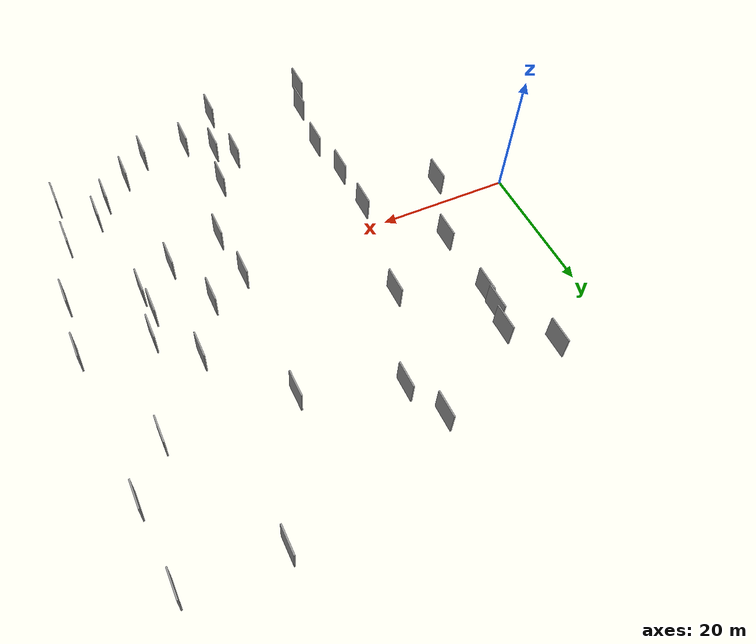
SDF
<sdf version="1.6">
 <world name="default">
  <scene>
   <sky><clouds><speed>12</speed></clouds></sky>
   <ambient>0.4 0.4 0.4 1</ambient>
   <background>0.7 0.7 0.7 1</background>
   <shadows>1</shadows>
  </scene>
  <gravity>0 0 -9.8066</gravity>
  <magnetic_field>6e-06 2.3e-05 -4.2e-05</magnetic_field>
  <physics default="0" name="default_physics" type="ode">
   <ode>
    <solver>
     <type>quick</type>
     <iters>10</iters>
     <sor>1.0</sor>
     <use_dynamic_moi_rescaling>0</use_dynamic_moi_rescaling>
    </solver>
    <constraints>
     <cfm>0</cfm>
     <erp>0.2</erp>
     <contact_max_correcting_vel>100</contact_max_correcting_vel>
     <contact_surface_layer>0.001</contact_surface_layer>
    </constraints>
   </ode>
   <max_step_size>0.004</max_step_size>
   <real_time_factor>1</real_time_factor>
   <real_time_update_rate>250</real_time_update_rate>
  </physics>
  <light name="sun" type="directional">
   <pose>0 0 10 0 0 0</pose>
   <diffuse>0.8 0.8 0.8 1</diffuse>
   <specular>0.2 0.2 0.2 1</specular>
   <attenuation>
    <range>1000</range>
    <constant>0.9</constant>
    <linear>0.01</linear>
    <quadratic>0.001</quadratic>
   </attenuation>
   <direction>-0.5 0.1 -0.9</direction>
  </light>
  <model name="grey_wall_1">
   <static>1</static>
   <pose>56.9369 2.0937 0.0 0.000000 0.000000 1.570796</pose>
   <link name="link">
    <pose>0 0 2.00 0 0 0</pose>
    <collision name="collision"><geometry><box><size>4.00 0.2 4.00</size></box></geometry></collision>
    <visual name="visual">
     <cast_shadows>0</cast_shadows>
     <geometry><box><size>4.00 0.2 4.00</size></box></geometry>
     <material>
      <script>
       <uri>model://grey_wall/materials/scripts</uri>
       <uri>model://grey_wall/materials/textures</uri>
       <name>vrc/grey_wall</name>
      </script>
     </material>
    </visual>
   </link>
  </model>
  <model name="grey_wall_2">
   <static>1</static>
   <pose>9.5402 -3.6361 0.0 0.000000 0.000000 1.570796</pose>
   <link name="link">
    <pose>0 0 2.00 0 0 0</pose>
    <collision name="collision"><geometry><box><size>4.00 0.2 4.00</size></box></geometry></collision>
    <visual name="visual">
     <cast_shadows>0</cast_shadows>
     <geometry><box><size>4.00 0.2 4.00</size></box></geometry>
     <material>
      <script>
       <uri>model://grey_wall/materials/scripts</uri>
       <uri>model://grey_wall/materials/textures</uri>
       <name>vrc/grey_wall</name>
      </script>
     </material>
    </visual>
   </link>
  </model>
  <model name="grey_wall_3">
   <static>1</static>
   <pose>67.4437 -4.2193 0.0 0.000000 0.000000 1.570796</pose>
   <link name="link">
    <pose>0 0 2.00 0 0 0</pose>
    <collision name="collision"><geometry><box><size>4.00 0.2 4.00</size></box></geometry></collision>
    <visual name="visual">
     <cast_shadows>0</cast_shadows>
     <geometry><box><size>4.00 0.2 4.00</size></box></geometry>
     <material>
      <script>
       <uri>model://grey_wall/materials/scripts</uri>
       <uri>model://grey_wall/materials/textures</uri>
       <name>vrc/grey_wall</name>
      </script>
     </material>
    </visual>
   </link>
  </model>
  <model name="grey_wall_4">
   <static>1</static>
   <pose>13.6289 6.6572 0.0 0.000000 0.000000 1.570796</pose>
   <link name="link">
    <pose>0 0 2.00 0 0 0</pose>
    <collision name="collision"><geometry><box><size>4.00 0.2 4.00</size></box></geometry></collision>
    <visual name="visual">
     <cast_shadows>0</cast_shadows>
     <geometry><box><size>4.00 0.2 4.00</size></box></geometry>
     <material>
      <script>
       <uri>model://grey_wall/materials/scripts</uri>
       <uri>model://grey_wall/materials/textures</uri>
       <name>vrc/grey_wall</name>
      </script>
     </material>
    </visual>
   </link>
  </model>
  <model name="grey_wall_5">
   <static>1</static>
   <pose>66.9574 27.7762 0.0 0.000000 0.000000 1.570796</pose>
   <link name="link">
    <pose>0 0 2.00 0 0 0</pose>
    <collision name="collision"><geometry><box><size>4.00 0.2 4.00</size></box></geometry></collision>
    <visual name="visual">
     <cast_shadows>0</cast_shadows>
     <geometry><box><size>4.00 0.2 4.00</size></box></geometry>
     <material>
      <script>
       <uri>model://grey_wall/materials/scripts</uri>
       <uri>model://grey_wall/materials/textures</uri>
       <name>vrc/grey_wall</name>
      </script>
     </material>
    </visual>
   </link>
  </model>
  <model name="grey_wall_6">
   <static>1</static>
   <pose>8.7792 28.5940 0.0 0.000000 0.000000 1.570796</pose>
   <link name="link">
    <pose>0 0 2.00 0 0 0</pose>
    <collision name="collision"><geometry><box><size>4.00 0.2 4.00</size></box></geometry></collision>
    <visual name="visual">
     <cast_shadows>0</cast_shadows>
     <geometry><box><size>4.00 0.2 4.00</size></box></geometry>
     <material>
      <script>
       <uri>model://grey_wall/materials/scripts</uri>
       <uri>model://grey_wall/materials/textures</uri>
       <name>vrc/grey_wall</name>
      </script>
     </material>
    </visual>
   </link>
  </model>
  <model name="grey_wall_7">
   <static>1</static>
   <pose>66.1612 39.3047 0.0 0.000000 0.000000 1.570796</pose>
   <link name="link">
    <pose>0 0 2.00 0 0 0</pose>
    <collision name="collision"><geometry><box><size>4.00 0.2 4.00</size></box></geometry></collision>
    <visual name="visual">
     <cast_shadows>0</cast_shadows>
     <geometry><box><size>4.00 0.2 4.00</size></box></geometry>
     <material>
      <script>
       <uri>model://grey_wall/materials/scripts</uri>
       <uri>model://grey_wall/materials/textures</uri>
       <name>vrc/grey_wall</name>
      </script>
     </material>
    </visual>
   </link>
  </model>
  <model name="grey_wall_8">
   <static>1</static>
   <pose>57.3067 -20.1619 0.0 0.000000 0.000000 1.570796</pose>
   <link name="link">
    <pose>0 0 2.00 0 0 0</pose>
    <collision name="collision"><geometry><box><size>4.00 0.2 4.00</size></box></geometry></collision>
    <visual name="visual">
     <cast_shadows>0</cast_shadows>
     <geometry><box><size>4.00 0.2 4.00</size></box></geometry>
     <material>
      <script>
       <uri>model://grey_wall/materials/scripts</uri>
       <uri>model://grey_wall/materials/textures</uri>
       <name>vrc/grey_wall</name>
      </script>
     </material>
    </visual>
   </link>
  </model>
  <model name="grey_wall_9">
   <static>1</static>
   <pose>20.8437 -31.5601 0.0 0.000000 0.000000 1.570796</pose>
   <link name="link">
    <pose>0 0 2.00 0 0 0</pose>
    <collision name="collision"><geometry><box><size>4.00 0.2 4.00</size></box></geometry></collision>
    <visual name="visual">
     <cast_shadows>0</cast_shadows>
     <geometry><box><size>4.00 0.2 4.00</size></box></geometry>
     <material>
      <script>
       <uri>model://grey_wall/materials/scripts</uri>
       <uri>model://grey_wall/materials/textures</uri>
       <name>vrc/grey_wall</name>
      </script>
     </material>
    </visual>
   </link>
  </model>
  <model name="grey_wall_10">
   <static>1</static>
   <pose>22.4071 -27.0931 0.0 0.000000 0.000000 1.570796</pose>
   <link name="link">
    <pose>0 0 2.00 0 0 0</pose>
    <collision name="collision"><geometry><box><size>4.00 0.2 4.00</size></box></geometry></collision>
    <visual name="visual">
     <cast_shadows>0</cast_shadows>
     <geometry><box><size>4.00 0.2 4.00</size></box></geometry>
     <material>
      <script>
       <uri>model://grey_wall/materials/scripts</uri>
       <uri>model://grey_wall/materials/textures</uri>
       <name>vrc/grey_wall</name>
      </script>
     </material>
    </visual>
   </link>
  </model>
  <model name="grey_wall_11">
   <static>1</static>
   <pose>52.2245 -4.5827 0.0 0.000000 0.000000 1.570796</pose>
   <link name="link">
    <pose>0 0 2.00 0 0 0</pose>
    <collision name="collision"><geometry><box><size>4.00 0.2 4.00</size></box></geometry></collision>
    <visual name="visual">
     <cast_shadows>0</cast_shadows>
     <geometry><box><size>4.00 0.2 4.00</size></box></geometry>
     <material>
      <script>
       <uri>model://grey_wall/materials/scripts</uri>
       <uri>model://grey_wall/materials/textures</uri>
       <name>vrc/grey_wall</name>
      </script>
     </material>
    </visual>
   </link>
  </model>
  <model name="grey_wall_12">
   <static>1</static>
   <pose>52.6826 39.9335 0.0 0.000000 0.000000 1.570796</pose>
   <link name="link">
    <pose>0 0 2.00 0 0 0</pose>
    <collision name="collision"><geometry><box><size>4.00 0.2 4.00</size></box></geometry></collision>
    <visual name="visual">
     <cast_shadows>0</cast_shadows>
     <geometry><box><size>4.00 0.2 4.00</size></box></geometry>
     <material>
      <script>
       <uri>model://grey_wall/materials/scripts</uri>
       <uri>model://grey_wall/materials/textures</uri>
       <name>vrc/grey_wall</name>
      </script>
     </material>
    </visual>
   </link>
  </model>
  <model name="grey_wall_13">
   <static>1</static>
   <pose>58.2556 6.1492 0.0 0.000000 0.000000 1.570796</pose>
   <link name="link">
    <pose>0 0 2.00 0 0 0</pose>
    <collision name="collision"><geometry><box><size>4.00 0.2 4.00</size></box></geometry></collision>
    <visual name="visual">
     <cast_shadows>0</cast_shadows>
     <geometry><box><size>4.00 0.2 4.00</size></box></geometry>
     <material>
      <script>
       <uri>model://grey_wall/materials/scripts</uri>
       <uri>model://grey_wall/materials/textures</uri>
       <name>vrc/grey_wall</name>
      </script>
     </material>
    </visual>
   </link>
  </model>
  <model name="grey_wall_14">
   <static>1</static>
   <pose>36.0063 -21.3054 0.0 0.000000 0.000000 1.570796</pose>
   <link name="link">
    <pose>0 0 2.00 0 0 0</pose>
    <collision name="collision"><geometry><box><size>4.00 0.2 4.00</size></box></geometry></collision>
    <visual name="visual">
     <cast_shadows>0</cast_shadows>
     <geometry><box><size>4.00 0.2 4.00</size></box></geometry>
     <material>
      <script>
       <uri>model://grey_wall/materials/scripts</uri>
       <uri>model://grey_wall/materials/textures</uri>
       <name>vrc/grey_wall</name>
      </script>
     </material>
    </visual>
   </link>
  </model>
  <model name="grey_wall_15">
   <static>1</static>
   <pose>13.2999 17.4530 0.0 0.000000 0.000000 1.570796</pose>
   <link name="link">
    <pose>0 0 2.00 0 0 0</pose>
    <collision name="collision"><geometry><box><size>4.00 0.2 4.00</size></box></geometry></collision>
    <visual name="visual">
     <cast_shadows>0</cast_shadows>
     <geometry><box><size>4.00 0.2 4.00</size></box></geometry>
     <material>
      <script>
       <uri>model://grey_wall/materials/scripts</uri>
       <uri>model://grey_wall/materials/textures</uri>
       <name>vrc/grey_wall</name>
      </script>
     </material>
    </visual>
   </link>
  </model>
  <model name="grey_wall_16">
   <static>1</static>
   <pose>43.2379 1.1329 0.0 0.000000 0.000000 1.570796</pose>
   <link name="link">
    <pose>0 0 2.00 0 0 0</pose>
    <collision name="collision"><geometry><box><size>4.00 0.2 4.00</size></box></geometry></collision>
    <visual name="visual">
     <cast_shadows>0</cast_shadows>
     <geometry><box><size>4.00 0.2 4.00</size></box></geometry>
     <material>
      <script>
       <uri>model://grey_wall/materials/scripts</uri>
       <uri>model://grey_wall/materials/textures</uri>
       <name>vrc/grey_wall</name>
      </script>
     </material>
    </visual>
   </link>
  </model>
  <model name="grey_wall_17">
   <static>1</static>
   <pose>59.3844 -17.3063 0.0 0.000000 0.000000 1.570796</pose>
   <link name="link">
    <pose>0 0 2.00 0 0 0</pose>
    <collision name="collision"><geometry><box><size>4.00 0.2 4.00</size></box></geometry></collision>
    <visual name="visual">
     <cast_shadows>0</cast_shadows>
     <geometry><box><size>4.00 0.2 4.00</size></box></geometry>
     <material>
      <script>
       <uri>model://grey_wall/materials/scripts</uri>
       <uri>model://grey_wall/materials/textures</uri>
       <name>vrc/grey_wall</name>
      </script>
     </material>
    </visual>
   </link>
  </model>
  <model name="grey_wall_18">
   <static>1</static>
   <pose>36.5653 -31.4506 0.0 0.000000 0.000000 1.570796</pose>
   <link name="link">
    <pose>0 0 2.00 0 0 0</pose>
    <collision name="collision"><geometry><box><size>4.00 0.2 4.00</size></box></geometry></collision>
    <visual name="visual">
     <cast_shadows>0</cast_shadows>
     <geometry><box><size>4.00 0.2 4.00</size></box></geometry>
     <material>
      <script>
       <uri>model://grey_wall/materials/scripts</uri>
       <uri>model://grey_wall/materials/textures</uri>
       <name>vrc/grey_wall</name>
      </script>
     </material>
    </visual>
   </link>
  </model>
  <model name="grey_wall_19">
   <static>1</static>
   <pose>24.9704 12.5374 0.0 0.000000 0.000000 1.570796</pose>
   <link name="link">
    <pose>0 0 2.00 0 0 0</pose>
    <collision name="collision"><geometry><box><size>4.00 0.2 4.00</size></box></geometry></collision>
    <visual name="visual">
     <cast_shadows>0</cast_shadows>
     <geometry><box><size>4.00 0.2 4.00</size></box></geometry>
     <material>
      <script>
       <uri>model://grey_wall/materials/scripts</uri>
       <uri>model://grey_wall/materials/textures</uri>
       <name>vrc/grey_wall</name>
      </script>
     </material>
    </visual>
   </link>
  </model>
  <model name="grey_wall_20">
   <static>1</static>
   <pose>61.7439 20.9682 0.0 0.000000 0.000000 1.570796</pose>
   <link name="link">
    <pose>0 0 2.00 0 0 0</pose>
    <collision name="collision"><geometry><box><size>4.00 0.2 4.00</size></box></geometry></collision>
    <visual name="visual">
     <cast_shadows>0</cast_shadows>
     <geometry><box><size>4.00 0.2 4.00</size></box></geometry>
     <material>
      <script>
       <uri>model://grey_wall/materials/scripts</uri>
       <uri>model://grey_wall/materials/textures</uri>
       <name>vrc/grey_wall</name>
      </script>
     </material>
    </visual>
   </link>
  </model>
  <model name="grey_wall_21">
   <static>1</static>
   <pose>57.3942 -1.7343 0.0 0.000000 0.000000 1.570796</pose>
   <link name="link">
    <pose>0 0 2.00 0 0 0</pose>
    <collision name="collision"><geometry><box><size>4.00 0.2 4.00</size></box></geometry></collision>
    <visual name="visual">
     <cast_shadows>0</cast_shadows>
     <geometry><box><size>4.00 0.2 4.00</size></box></geometry>
     <material>
      <script>
       <uri>model://grey_wall/materials/scripts</uri>
       <uri>model://grey_wall/materials/textures</uri>
       <name>vrc/grey_wall</name>
      </script>
     </material>
    </visual>
   </link>
  </model>
  <model name="grey_wall_22">
   <static>1</static>
   <pose>22.0836 -3.7233 0.0 0.000000 0.000000 1.570796</pose>
   <link name="link">
    <pose>0 0 2.00 0 0 0</pose>
    <collision name="collision"><geometry><box><size>4.00 0.2 4.00</size></box></geometry></collision>
    <visual name="visual">
     <cast_shadows>0</cast_shadows>
     <geometry><box><size>4.00 0.2 4.00</size></box></geometry>
     <material>
      <script>
       <uri>model://grey_wall/materials/scripts</uri>
       <uri>model://grey_wall/materials/textures</uri>
       <name>vrc/grey_wall</name>
      </script>
     </material>
    </visual>
   </link>
  </model>
  <model name="grey_wall_23">
   <static>1</static>
   <pose>22.2518 -11.4094 0.0 0.000000 0.000000 1.570796</pose>
   <link name="link">
    <pose>0 0 2.00 0 0 0</pose>
    <collision name="collision"><geometry><box><size>4.00 0.2 4.00</size></box></geometry></collision>
    <visual name="visual">
     <cast_shadows>0</cast_shadows>
     <geometry><box><size>4.00 0.2 4.00</size></box></geometry>
     <material>
      <script>
       <uri>model://grey_wall/materials/scripts</uri>
       <uri>model://grey_wall/materials/textures</uri>
       <name>vrc/grey_wall</name>
      </script>
     </material>
    </visual>
   </link>
  </model>
  <model name="grey_wall_24">
   <static>1</static>
   <pose>44.0785 -6.8377 0.0 0.000000 0.000000 1.570796</pose>
   <link name="link">
    <pose>0 0 2.00 0 0 0</pose>
    <collision name="collision"><geometry><box><size>4.00 0.2 4.00</size></box></geometry></collision>
    <visual name="visual">
     <cast_shadows>0</cast_shadows>
     <geometry><box><size>4.00 0.2 4.00</size></box></geometry>
     <material>
      <script>
       <uri>model://grey_wall/materials/scripts</uri>
       <uri>model://grey_wall/materials/textures</uri>
       <name>vrc/grey_wall</name>
      </script>
     </material>
    </visual>
   </link>
  </model>
  <model name="grey_wall_25">
   <static>1</static>
   <pose>64.7324 -14.3137 0.0 0.000000 0.000000 1.570796</pose>
   <link name="link">
    <pose>0 0 2.00 0 0 0</pose>
    <collision name="collision"><geometry><box><size>4.00 0.2 4.00</size></box></geometry></collision>
    <visual name="visual">
     <cast_shadows>0</cast_shadows>
     <geometry><box><size>4.00 0.2 4.00</size></box></geometry>
     <material>
      <script>
       <uri>model://grey_wall/materials/scripts</uri>
       <uri>model://grey_wall/materials/textures</uri>
       <name>vrc/grey_wall</name>
      </script>
     </material>
    </visual>
   </link>
  </model>
  <model name="grey_wall_26">
   <static>1</static>
   <pose>53.3178 -23.5683 0.0 0.000000 0.000000 1.570796</pose>
   <link name="link">
    <pose>0 0 2.00 0 0 0</pose>
    <collision name="collision"><geometry><box><size>4.00 0.2 4.00</size></box></geometry></collision>
    <visual name="visual">
     <cast_shadows>0</cast_shadows>
     <geometry><box><size>4.00 0.2 4.00</size></box></geometry>
     <material>
      <script>
       <uri>model://grey_wall/materials/scripts</uri>
       <uri>model://grey_wall/materials/textures</uri>
       <name>vrc/grey_wall</name>
      </script>
     </material>
    </visual>
   </link>
  </model>
  <model name="grey_wall_27">
   <static>1</static>
   <pose>23.3453 -18.5073 0.0 0.000000 0.000000 1.570796</pose>
   <link name="link">
    <pose>0 0 2.00 0 0 0</pose>
    <collision name="collision"><geometry><box><size>4.00 0.2 4.00</size></box></geometry></collision>
    <visual name="visual">
     <cast_shadows>0</cast_shadows>
     <geometry><box><size>4.00 0.2 4.00</size></box></geometry>
     <material>
      <script>
       <uri>model://grey_wall/materials/scripts</uri>
       <uri>model://grey_wall/materials/textures</uri>
       <name>vrc/grey_wall</name>
      </script>
     </material>
    </visual>
   </link>
  </model>
  <model name="grey_wall_28">
   <static>1</static>
   <pose>49.4405 -26.6519 0.0 0.000000 0.000000 1.570796</pose>
   <link name="link">
    <pose>0 0 2.00 0 0 0</pose>
    <collision name="collision"><geometry><box><size>4.00 0.2 4.00</size></box></geometry></collision>
    <visual name="visual">
     <cast_shadows>0</cast_shadows>
     <geometry><box><size>4.00 0.2 4.00</size></box></geometry>
     <material>
      <script>
       <uri>model://grey_wall/materials/scripts</uri>
       <uri>model://grey_wall/materials/textures</uri>
       <name>vrc/grey_wall</name>
      </script>
     </material>
    </visual>
   </link>
  </model>
  <model name="grey_wall_29">
   <static>1</static>
   <pose>38.6146 -23.8953 0.0 0.000000 0.000000 1.570796</pose>
   <link name="link">
    <pose>0 0 2.00 0 0 0</pose>
    <collision name="collision"><geometry><box><size>4.00 0.2 4.00</size></box></geometry></collision>
    <visual name="visual">
     <cast_shadows>0</cast_shadows>
     <geometry><box><size>4.00 0.2 4.00</size></box></geometry>
     <material>
      <script>
       <uri>model://grey_wall/materials/scripts</uri>
       <uri>model://grey_wall/materials/textures</uri>
       <name>vrc/grey_wall</name>
      </script>
     </material>
    </visual>
   </link>
  </model>
  <model name="grey_wall_30">
   <static>1</static>
   <pose>13.5304 20.5556 0.0 0.000000 0.000000 1.570796</pose>
   <link name="link">
    <pose>0 0 2.00 0 0 0</pose>
    <collision name="collision"><geometry><box><size>4.00 0.2 4.00</size></box></geometry></collision>
    <visual name="visual">
     <cast_shadows>0</cast_shadows>
     <geometry><box><size>4.00 0.2 4.00</size></box></geometry>
     <material>
      <script>
       <uri>model://grey_wall/materials/scripts</uri>
       <uri>model://grey_wall/materials/textures</uri>
       <name>vrc/grey_wall</name>
      </script>
     </material>
    </visual>
   </link>
  </model>
  <model name="grey_wall_31">
   <static>1</static>
   <pose>64.2878 -22.4194 0.0 0.000000 0.000000 1.570796</pose>
   <link name="link">
    <pose>0 0 2.00 0 0 0</pose>
    <collision name="collision"><geometry><box><size>4.00 0.2 4.00</size></box></geometry></collision>
    <visual name="visual">
     <cast_shadows>0</cast_shadows>
     <geometry><box><size>4.00 0.2 4.00</size></box></geometry>
     <material>
      <script>
       <uri>model://grey_wall/materials/scripts</uri>
       <uri>model://grey_wall/materials/textures</uri>
       <name>vrc/grey_wall</name>
      </script>
     </material>
    </visual>
   </link>
  </model>
  <model name="grey_wall_32">
   <static>1</static>
   <pose>14.3028 23.9347 0.0 0.000000 0.000000 1.570796</pose>
   <link name="link">
    <pose>0 0 2.00 0 0 0</pose>
    <collision name="collision"><geometry><box><size>4.00 0.2 4.00</size></box></geometry></collision>
    <visual name="visual">
     <cast_shadows>0</cast_shadows>
     <geometry><box><size>4.00 0.2 4.00</size></box></geometry>
     <material>
      <script>
       <uri>model://grey_wall/materials/scripts</uri>
       <uri>model://grey_wall/materials/textures</uri>
       <name>vrc/grey_wall</name>
      </script>
     </material>
    </visual>
   </link>
  </model>
  <model name="grey_wall_33">
   <static>1</static>
   <pose>43.9641 21.8795 0.0 0.000000 0.000000 1.570796</pose>
   <link name="link">
    <pose>0 0 2.00 0 0 0</pose>
    <collision name="collision"><geometry><box><size>4.00 0.2 4.00</size></box></geometry></collision>
    <visual name="visual">
     <cast_shadows>0</cast_shadows>
     <geometry><box><size>4.00 0.2 4.00</size></box></geometry>
     <material>
      <script>
       <uri>model://grey_wall/materials/scripts</uri>
       <uri>model://grey_wall/materials/textures</uri>
       <name>vrc/grey_wall</name>
      </script>
     </material>
    </visual>
   </link>
  </model>
  <model name="grey_wall_34">
   <static>1</static>
   <pose>40.1112 -16.5106 0.0 0.000000 0.000000 1.570796</pose>
   <link name="link">
    <pose>0 0 2.00 0 0 0</pose>
    <collision name="collision"><geometry><box><size>4.00 0.2 4.00</size></box></geometry></collision>
    <visual name="visual">
     <cast_shadows>0</cast_shadows>
     <geometry><box><size>4.00 0.2 4.00</size></box></geometry>
     <material>
      <script>
       <uri>model://grey_wall/materials/scripts</uri>
       <uri>model://grey_wall/materials/textures</uri>
       <name>vrc/grey_wall</name>
      </script>
     </material>
    </visual>
   </link>
  </model>
  <model name="grey_wall_35">
   <static>1</static>
   <pose>42.5704 -26.9034 0.0 0.000000 0.000000 1.570796</pose>
   <link name="link">
    <pose>0 0 2.00 0 0 0</pose>
    <collision name="collision"><geometry><box><size>4.00 0.2 4.00</size></box></geometry></collision>
    <visual name="visual">
     <cast_shadows>0</cast_shadows>
     <geometry><box><size>4.00 0.2 4.00</size></box></geometry>
     <material>
      <script>
       <uri>model://grey_wall/materials/scripts</uri>
       <uri>model://grey_wall/materials/textures</uri>
       <name>vrc/grey_wall</name>
      </script>
     </material>
    </visual>
   </link>
  </model>
  <model name="grey_wall_36">
   <static>1</static>
   <pose>27.8859 32.1582 0.0 0.000000 0.000000 1.570796</pose>
   <link name="link">
    <pose>0 0 2.00 0 0 0</pose>
    <collision name="collision"><geometry><box><size>4.00 0.2 4.00</size></box></geometry></collision>
    <visual name="visual">
     <cast_shadows>0</cast_shadows>
     <geometry><box><size>4.00 0.2 4.00</size></box></geometry>
     <material>
      <script>
       <uri>model://grey_wall/materials/scripts</uri>
       <uri>model://grey_wall/materials/textures</uri>
       <name>vrc/grey_wall</name>
      </script>
     </material>
    </visual>
   </link>
  </model>
  <model name="grey_wall_37">
   <static>1</static>
   <pose>30.5004 26.4084 0.0 0.000000 0.000000 1.570796</pose>
   <link name="link">
    <pose>0 0 2.00 0 0 0</pose>
    <collision name="collision"><geometry><box><size>4.00 0.2 4.00</size></box></geometry></collision>
    <visual name="visual">
     <cast_shadows>0</cast_shadows>
     <geometry><box><size>4.00 0.2 4.00</size></box></geometry>
     <material>
      <script>
       <uri>model://grey_wall/materials/scripts</uri>
       <uri>model://grey_wall/materials/textures</uri>
       <name>vrc/grey_wall</name>
      </script>
     </material>
    </visual>
   </link>
  </model>
  <model name="grey_wall_38">
   <static>1</static>
   <pose>68.2202 4.8838 0.0 0.000000 0.000000 1.570796</pose>
   <link name="link">
    <pose>0 0 2.00 0 0 0</pose>
    <collision name="collision"><geometry><box><size>4.00 0.2 4.00</size></box></geometry></collision>
    <visual name="visual">
     <cast_shadows>0</cast_shadows>
     <geometry><box><size>4.00 0.2 4.00</size></box></geometry>
     <material>
      <script>
       <uri>model://grey_wall/materials/scripts</uri>
       <uri>model://grey_wall/materials/textures</uri>
       <name>vrc/grey_wall</name>
      </script>
     </material>
    </visual>
   </link>
  </model>
  <model name="grey_wall_39">
   <static>1</static>
   <pose>48.8170 3.6627 0.0 0.000000 0.000000 1.570796</pose>
   <link name="link">
    <pose>0 0 2.00 0 0 0</pose>
    <collision name="collision"><geometry><box><size>4.00 0.2 4.00</size></box></geometry></collision>
    <visual name="visual">
     <cast_shadows>0</cast_shadows>
     <geometry><box><size>4.00 0.2 4.00</size></box></geometry>
     <material>
      <script>
       <uri>model://grey_wall/materials/scripts</uri>
       <uri>model://grey_wall/materials/textures</uri>
       <name>vrc/grey_wall</name>
      </script>
     </material>
    </visual>
   </link>
  </model>
  <model name="grey_wall_40">
   <static>1</static>
   <pose>53.1889 11.4684 0.0 0.000000 0.000000 1.570796</pose>
   <link name="link">
    <pose>0 0 2.00 0 0 0</pose>
    <collision name="collision"><geometry><box><size>4.00 0.2 4.00</size></box></geometry></collision>
    <visual name="visual">
     <cast_shadows>0</cast_shadows>
     <geometry><box><size>4.00 0.2 4.00</size></box></geometry>
     <material>
      <script>
       <uri>model://grey_wall/materials/scripts</uri>
       <uri>model://grey_wall/materials/textures</uri>
       <name>vrc/grey_wall</name>
      </script>
     </material>
    </visual>
   </link>
  </model>
 </world>
</sdf>
